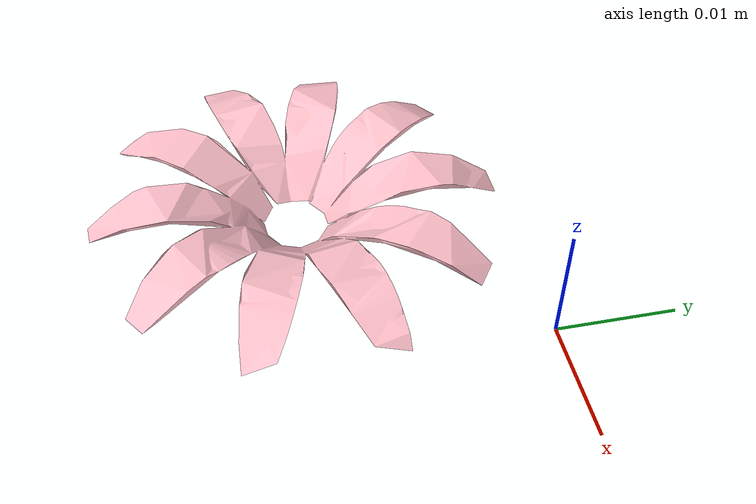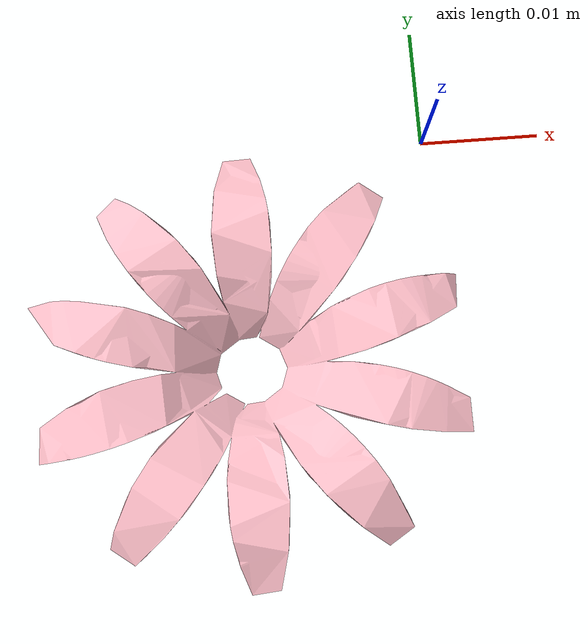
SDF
<?xml version="1.0" ?>
<sdf version="1.5">
  <model name="flower">
    <static>true</static>
    <link name="link">
      <pose>0 0 0 0 0 0</pose>

      <visual name="visual">
        <geometry>
          <mesh>
            <uri>model://flower2/meshes/flower.STL</uri>
            <scale>0.001 0.001 0.001</scale>
          </mesh>
        </geometry>
        <material> <!-- Wheel material -->
          <ambient>1 0.75 0.79 1</ambient>
          <diffuse>1 0.75 0.79 1</diffuse>
          <specular>1 1 1 1</specular>
          <emissive>0 0 0 1</emissive>
        </material> <!-- End wheel material -->
      </visual>

    </link>
  </model>
</sdf>
